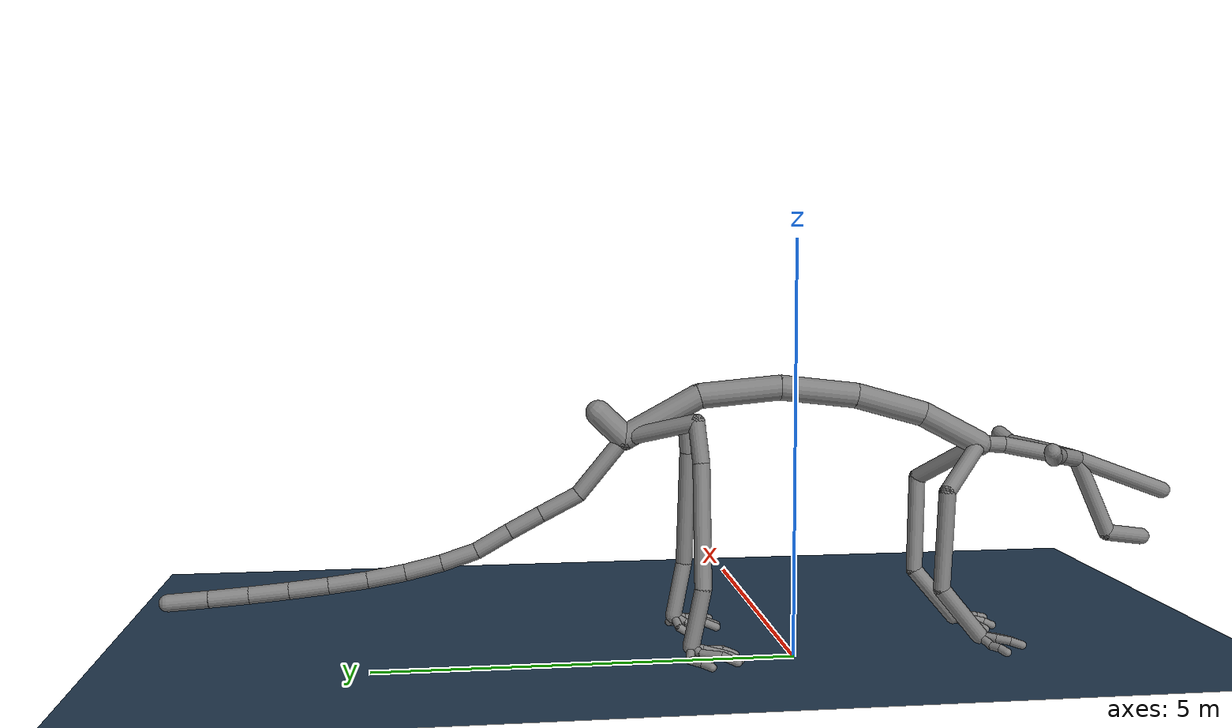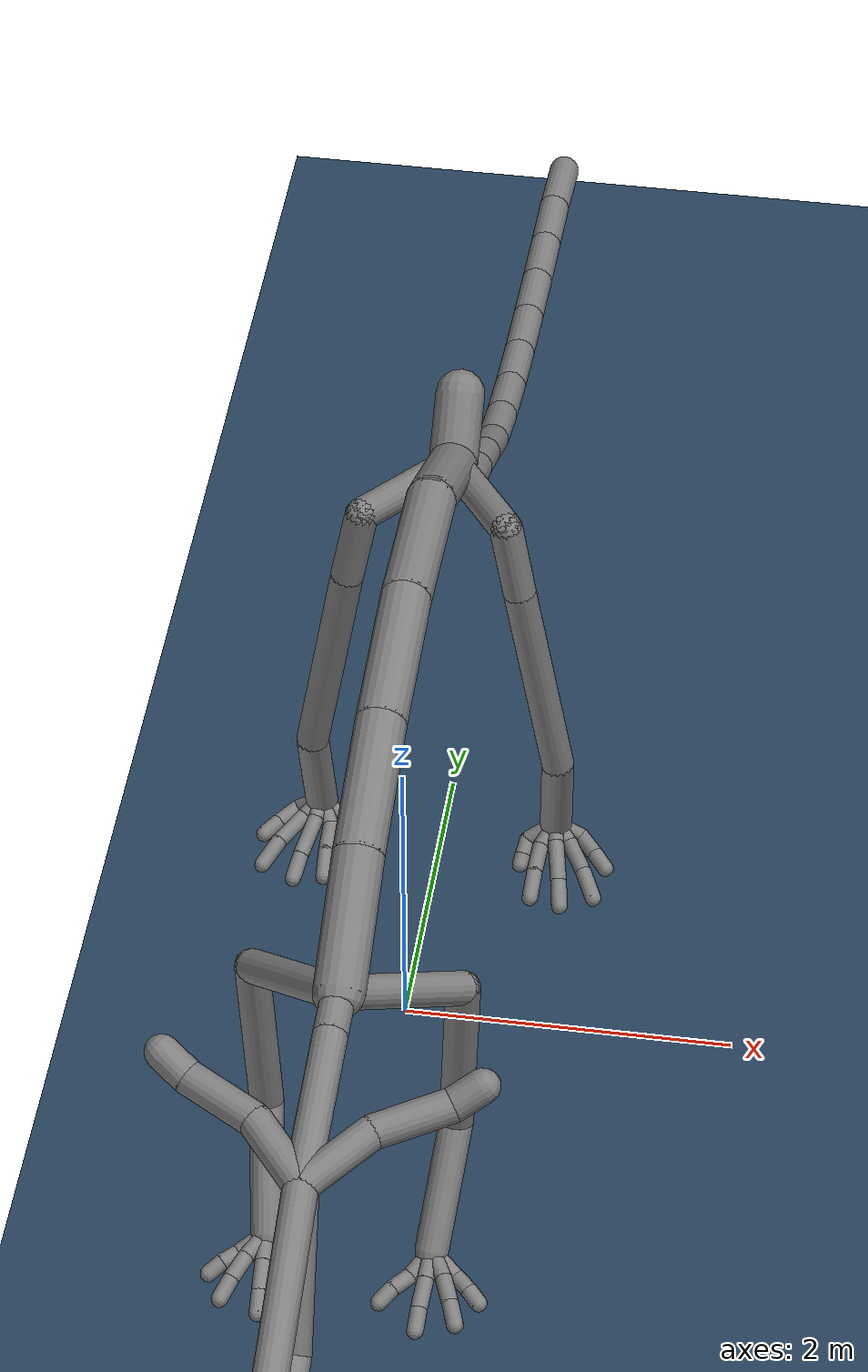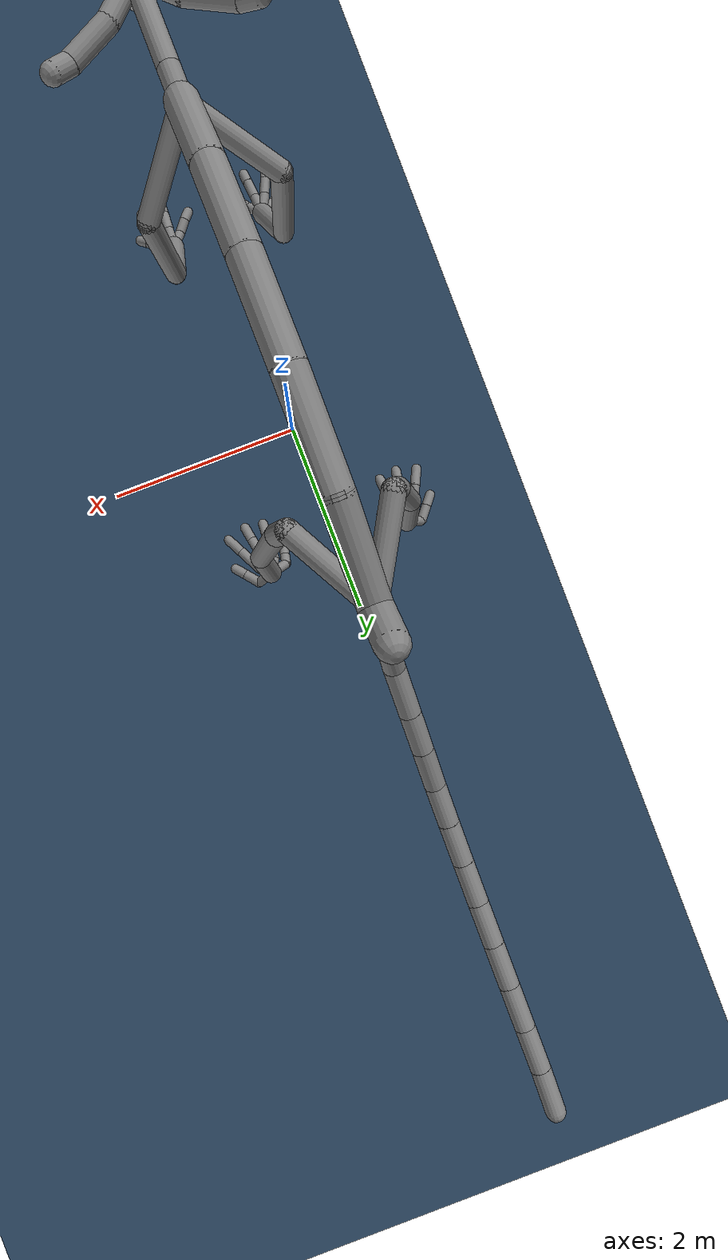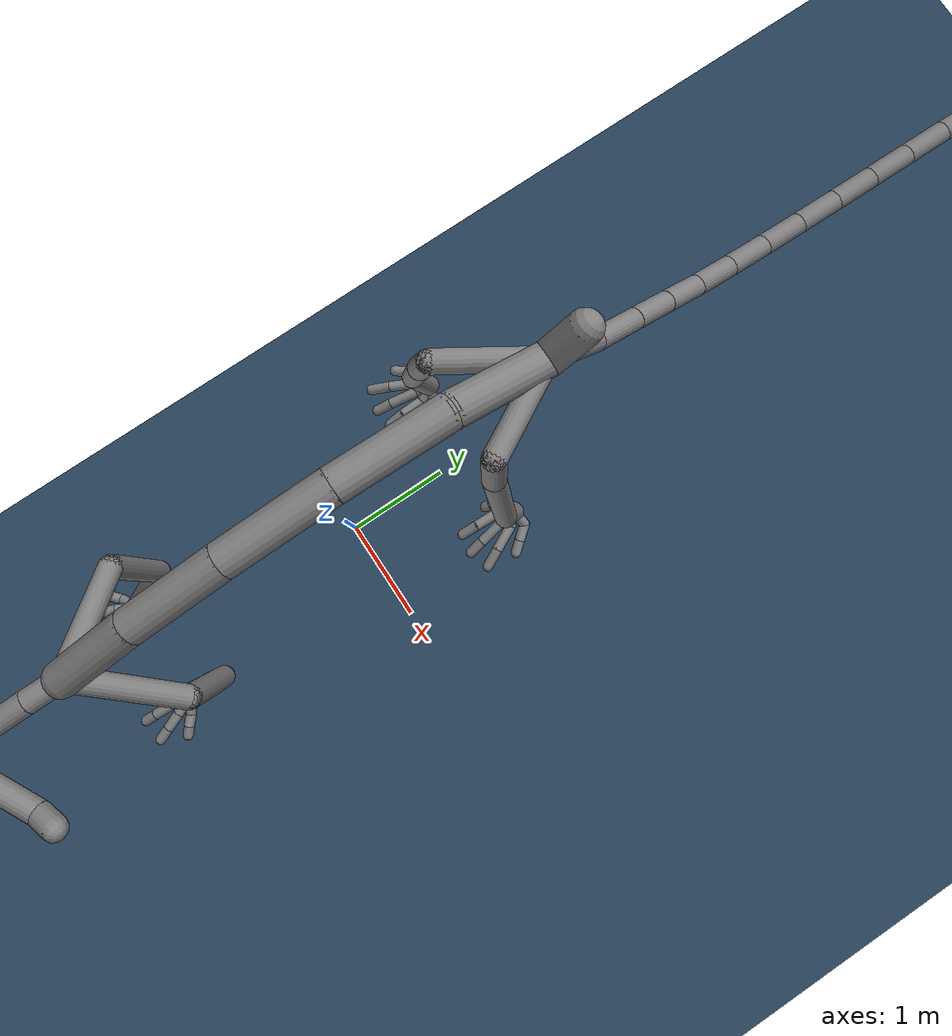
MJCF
<mujoco model="unnamed_model">
  <compiler angle="degree"/>
  <option timestep="0.001" integrator="implicitfast"/>
  <default>
    <default class="/">
      <tendon range="-1 1"/>
      <general ctrllimited="true" forcelimited="false" ctrlrange="-1 1" gainprm="5"/>
    </default>
  </default>
  <asset>
    <texture name="grid" type="2d" builtin="checker" rgb1="0.10000000000000001 0.20000000000000001 0.29999999999999999" rgb2="0.20000000000000001 0.29999999999999999 0.40000000000000002" width="512" height="512"/>
    <material name="grid" class="/" texture="grid" texrepeat="1 1" texuniform="true" reflectance="0.20000000000000001"/>
  </asset>
  <worldbody>
    <camera name="cam0" pos="5 -17 7" xyaxes="1 0.25 0 0 0.3 1" mode="trackcom"/>
    <geom name="floor" class="/" type="plane" condim="3" size="0 0 0.050000000000000003" material="grid"/>
    <body name="Back_1" pos="0.00021187790844123811 2.3454556465148926 2.9882309436798096" quat="1 0 0 0">
      <joint name="//unnamed_joint_0" class="/" type="free"/>
      <geom name="Back_1_geom" class="/" type="capsule" size="0.14999999999999999" fromto="0 0 0 0 -0.30201101303100586 -0.2969825267791748"/>
      <body name="Back_2" pos="0 -0.30201101303100586 -0.2969825267791748" quat="1 0 0 0">
        <joint name="rx_Back_2" class="/" type="hinge" axis="1 0 0" stiffness="0.01" range="-9.9999997090929202 9.9999997090929202" damping="0.01"/>
        <joint name="rz_Back_2" class="/" type="hinge" axis="0 0 1" stiffness="0.01" range="-9.9999997090929202 6.0000001669652114" damping="0.01"/>
        <geom name="Back_2_geom" class="/" type="capsule" size="0.14999999999999999" fromto="0 0 0 0 -0.87888956069946289 0.4750666618347168"/>
        <body name="Back_3" pos="0 -0.87888956069946289 0.4750666618347168" quat="1 0 0 0">
          <joint name="rx_Back_3" class="/" type="hinge" axis="1 0 0" stiffness="0.01" range="-9.9999997090929202 9.9999997090929202" damping="0.01"/>
          <joint name="rz_Back_3" class="/" type="hinge" axis="0 0 1" stiffness="0.01" range="-9.9999997090929202 6.0000001669652114" damping="0.01"/>
          <geom name="Back_3_geom" class="/" type="capsule" size="0.14999999999999999" fromto="0 0 0 0 -0.96779227256774902 0.087907791137695312"/>
          <body name="Back_4" pos="0 -0.96779227256774902 0.087907791137695312" quat="1 0 0 0">
            <joint name="rx_Back_4" class="/" type="hinge" axis="1 0 0" stiffness="0.01" range="-9.9999997090929202 9.9999997090929202" damping="0.01"/>
            <joint name="rz_Back_4" class="/" type="hinge" axis="0 0 1" stiffness="0.01" range="-9.9999997090929202 6.0000001669652114" damping="0.01"/>
            <geom name="Back_4_geom" class="/" type="capsule" size="0.14999999999999999" fromto="0 0 0 0 -0.92454928159713745 -0.10741996765136719"/>
            <body name="Back_5" pos="0 -0.92454928159713745 -0.10741996765136719" quat="1 0 0 0">
              <joint name="rx_Back_5" class="/" type="hinge" axis="1 0 0" stiffness="0.01" range="-9.9999997090929202 9.9999997090929202" damping="0.01"/>
              <joint name="rz_Back_5" class="/" type="hinge" axis="0 0 1" stiffness="0.01" range="-9.9999997090929202 6.0000001669652114" damping="0.01"/>
              <geom name="Back_5_geom" class="/" type="capsule" size="0.14999999999999999" fromto="0 0 0 0 -0.82181739807128906 -0.23150253295898438"/>
              <body name="Back_6" pos="0 -0.82181739807128906 -0.23150253295898438" quat="1 0 0 0">
                <joint name="rx_Back_6" class="/" type="hinge" axis="1 0 0" stiffness="0.01" range="-9.9999997090929202 9.9999997090929202" damping="0.01"/>
                <joint name="rz_Back_6" class="/" type="hinge" axis="0 0 1" stiffness="0.01" range="-9.9999997090929202 6.0000001669652114" damping="0.01"/>
                <geom name="Back_6_geom" class="/" type="capsule" size="0.14999999999999999" fromto="0 0 0 0 -0.71339571475982666 -0.37315845489501953"/>
                <body name="Neck" pos="0 -0.71339571475982666 -0.37315845489501953" quat="1 0 0 0">
                  <geom name="Neck_geom" class="/" type="capsule" size="0.10000000000000001" fromto="0 0 0 0 -0.30498695373535156 -0.017315864562988281"/>
                  <body name="Head" pos="0 -0.30498695373535156 -0.017315864562988281" quat="1 0 0 0">
                    <geom name="Head_geom" class="/" type="capsule" size="0.10000000000000001" fromto="0 0 0 -0.010121570900082588 -0.93259739875793457 -0.19159269332885742"/>
                    <body name="L_Ear_1" pos="-0.010121570900082588 -0.93259739875793457 -0.19159269332885742" quat="1 0 0 0">
                      <geom name="L_Ear_1_geom" class="/" type="capsule" size="0.10000000000000001" fromto="0 0 0 0.33274480700492859 0.35448598861694336 0.086129665374755859"/>
                      <body name="L_Ear_2" pos="0.33274480700492859 0.35448598861694336 0.086129665374755859" quat="1 0 0 0">
                        <geom name="L_Ear_2_geom" class="/" type="capsule" size="0.10000000000000001" fromto="0 0 0 0.40737244486808777 0.22723960876464844 0.034210205078125"/>
                        <body name="L_Ear_3" pos="0.40737244486808777 0.22723960876464844 0.034210205078125" quat="1 0 0 0">
                          <geom name="L_Ear_3_geom" class="/" type="capsule" size="0.10000000000000001" fromto="0 0 0 0.1545829176902771 0.080089569091796875 0.090645790100097656"/>
                        </body>
                      </body>
                    </body>
                    <body name="Jaw_1" pos="-0.010121570900082588 -0.93259739875793457 -0.19159269332885742" quat="1 0 0 0">
                      <geom name="Jaw_1_geom" class="/" type="capsule" size="0.10000000000000001" fromto="0 0 0 0.010121571831405163 -0.42033553123474121 -0.92277634143829346"/>
                      <body name="Jaw_2" pos="0.010121571831405163 -0.42033553123474121 -0.92277634143829346" quat="1 0 0 0">
                        <geom name="Jaw_2_geom" class="/" type="capsule" size="0.10000000000000001" fromto="0 0 0 0.0098123569041490555 -0.4501652717590332 -0.062956690788269043"/>
                      </body>
                    </body>
                    <body name="R_Ear_1" pos="-0.010121570900082588 -0.93259739875793457 -0.19159269332885742" quat="1 0 0 0">
                      <geom name="R_Ear_1_geom" class="/" type="capsule" size="0.10000000000000001" fromto="0 0 0 -0.3125016987323761 0.35448598861694336 0.086129665374755859"/>
                      <body name="R_Ear_2" pos="-0.3125016987323761 0.35448598861694336 0.086129665374755859" quat="1 0 0 0">
                        <geom name="R_Ear_2_geom" class="/" type="capsule" size="0.10000000000000001" fromto="0 0 0 -0.40737241506576538 0.22723984718322754 0.034210205078125"/>
                        <body name="R_Ear_3" pos="-0.40737241506576538 0.22723984718322754 0.034210205078125" quat="1 0 0 0">
                          <geom name="R_Ear_3_geom" class="/" type="capsule" size="0.10000000000000001" fromto="0 0 0 -0.1545829176902771 0.080089807510375977 0.090645790100097656"/>
                        </body>
                      </body>
                    </body>
                    <body name="Nose" pos="-0.010121570900082588 -0.93259739875793457 -0.19159269332885742" quat="1 0 0 0">
                      <geom name="Nose_geom" class="/" type="capsule" size="0.10000000000000001" fromto="0 0 0 9.3132257461547852e-10 -1.112250804901123 -0.41056263446807861"/>
                    </body>
                    <site name="Head" class="/" type="box" size="0.002 0.002 0.002"/>
                  </body>
                </body>
                <body name="L_F_Paw_1" pos="0 -0.71339571475982666 -0.37315845489501953" quat="1 0 0 0">
                  <joint name="rx_L_F_Paw_1" class="/" type="hinge" axis="1 0 0" stiffness="0.01" range="-30.000000834826057 30.000000834826057" damping="0.01"/>
                  <joint name="ry_L_F_Paw_1" class="/" type="hinge" axis="0 1 0" stiffness="0.01" range="-19.99999941818584 19.99999941818584" damping="0.01"/>
                  <joint name="rz_L_F_Paw_1" class="/" type="hinge" axis="0 0 1" stiffness="0.01" range="-30.000000834826057 30.000000834826057" damping="0.01"/>
                  <geom name="L_F_Paw_1_geom" class="/" type="capsule" size="0.10000000000000001" fromto="0 0 0 0.60480690002441406 0.5854717493057251 -0.48604297637939453"/>
                  <body name="L_F_Paw_2" pos="0.60480690002441406 0.5854717493057251 -0.48604297637939453" quat="1 0 0 0">
                    <joint name="rx_L_F_Paw_2" class="/" type="hinge" axis="1 0 0" stiffness="0.01" range="-9.9999997090929202 9.9999997090929202" damping="0.01"/>
                    <joint name="rz_L_F_Paw_2" class="/" type="hinge" axis="0 0 1" stiffness="0.01" range="-45.00000125223908 45.00000125223908" damping="0.01"/>
                    <geom name="L_F_Paw_2_geom" class="/" type="capsule" size="0.10000000000000001" fromto="0 0 0 -0.047607064247131348 0.032661795616149902 -1.1593438386917114"/>
                    <body name="L_F_Paw_3" pos="-0.047607064247131348 0.032661795616149902 -1.1593438386917114" quat="1 0 0 0">
                      <geom name="L_F_Paw_3_geom" class="/" type="capsule" size="0.10000000000000001" fromto="0 0 0 -0.073491662740707397 -0.49489045143127441 -0.59002864360809326"/>
                      <body name="L_F_Finger_2_1" pos="-0.073491662740707397 -0.49489045143127441 -0.59002864360809326" quat="1 0 0 0">
                        <geom name="L_F_Finger_2_1_geom" class="/" type="capsule" size="0.050000000000000003" fromto="0 0 0 -0.0078994333744049072 -0.19724273681640625 -0.03392493724822998"/>
                        <body name="L_F_Finger_2_2" pos="-0.0078994333744049072 -0.19724273681640625 -0.03392493724822998" quat="1 0 0 0">
                          <geom name="L_F_Finger_2_2_geom" class="/" type="capsule" size="0.050000000000000003" fromto="0 0 0 -0.01064792275428772 -0.18222808837890625 -0.045739084482192993"/>
                          <body name="L_F_Finger_2_3" pos="-0.01064792275428772 -0.18222808837890625 -0.045739084482192993" quat="1 0 0 0">
                            <geom name="L_F_Finger_2_3_geom" class="/" type="capsule" size="0.050000000000000003" fromto="0 0 0 -0.0049792826175689697 -0.12030792236328125 -0.052464395761489868"/>
                          </body>
                        </body>
                      </body>
                      <body name="L_F_Finger_3_1" pos="-0.073491662740707397 -0.49489045143127441 -0.59002864360809326" quat="1 0 0 0">
                        <geom name="L_F_Finger_3_1_geom" class="/" type="capsule" size="0.050000000000000003" fromto="0 0 0 0.095373988151550293 -0.17918014526367188 -0.022127985954284668"/>
                        <body name="L_F_Finger_3_2" pos="0.095373988151550293 -0.17918014526367188 -0.022127985954284668" quat="1 0 0 0">
                          <geom name="L_F_Finger_3_2_geom" class="/" type="capsule" size="0.050000000000000003" fromto="0 0 0 0.061350643634796143 -0.15597343444824219 -0.026206851005554199"/>
                          <body name="L_F_Finger_3_3" pos="0.061350643634796143 -0.15597343444824219 -0.026206851005554199" quat="1 0 0 0">
                            <geom name="L_F_Finger_3_3_geom" class="/" type="capsule" size="0.050000000000000003" fromto="0 0 0 0.046480953693389893 -0.12756919860839844 -0.038167834281921387"/>
                            <site name="L_F_Finger_3_3" class="/" type="box" size="0.0040000000000000001 0.0040000000000000001 0.002"/>
                          </body>
                        </body>
                      </body>
                      <body name="L_F_Finger_4_1" pos="-0.073491662740707397 -0.49489045143127441 -0.59002864360809326" quat="1 0 0 0">
                        <geom name="L_F_Finger_4_1_geom" class="/" type="capsule" size="0.050000000000000003" fromto="0 0 0 0.15609729290008545 -0.09903717041015625 -0.091727137565612793"/>
                        <body name="L_F_Finger_4_2" pos="0.15609729290008545 -0.09903717041015625 -0.091727137565612793" quat="1 0 0 0">
                          <geom name="L_F_Finger_4_2_geom" class="/" type="capsule" size="0.050000000000000003" fromto="0 0 0 0.084686100482940674 -0.077215194702148438 -0.011312365531921387"/>
                          <body name="L_F_Finger_4_3" pos="0.084686100482940674 -0.077215194702148438 -0.011312365531921387" quat="1 0 0 0">
                            <geom name="L_F_Finger_4_3_geom" class="/" type="capsule" size="0.050000000000000003" fromto="0 0 0 0.068652927875518799 -0.063507080078125 -0.036796450614929199"/>
                          </body>
                        </body>
                      </body>
                      <body name="L_F_Finger_1_1" pos="-0.073491662740707397 -0.49489045143127441 -0.59002864360809326" quat="1 0 0 0">
                        <geom name="L_F_Finger_1_1_geom" class="/" type="capsule" size="0.050000000000000003" fromto="0 0 0 -0.10550609230995178 -0.1405181884765625 -0.081401705741882324"/>
                        <body name="L_F_Finger_1_2" pos="-0.10550609230995178 -0.1405181884765625 -0.081401705741882324" quat="1 0 0 0">
                          <geom name="L_F_Finger_1_2_geom" class="/" type="capsule" size="0.050000000000000003" fromto="0 0 0 -0.088151127099990845 -0.10850334167480469 0.00011074542999267578"/>
                          <body name="L_F_Finger_1_3" pos="-0.088151127099990845 -0.10850334167480469 0.00011074542999267578" quat="1 0 0 0">
                            <geom name="L_F_Finger_1_3_geom" class="/" type="capsule" size="0.050000000000000003" fromto="0 0 0 -0.065333500504493713 -0.083648681640625 -0.036964312195777893"/>
                          </body>
                        </body>
                      </body>
                    </body>
                  </body>
                </body>
                <body name="R_F_Paw_1" pos="0 -0.71339571475982666 -0.37315845489501953" quat="1 0 0 0">
                  <joint name="rx_R_F_Paw_1" class="/" type="hinge" axis="1 0 0" stiffness="0.01" range="-30.000000834826057 30.000000834826057" damping="0.01"/>
                  <joint name="ry_R_F_Paw_1" class="/" type="hinge" axis="0 1 0" stiffness="0.01" range="-19.99999941818584 19.99999941818584" damping="0.01"/>
                  <joint name="rz_R_F_Paw_1" class="/" type="hinge" axis="0 0 1" stiffness="0.01" range="-30.000000834826057 30.000000834826057" damping="0.01"/>
                  <geom name="R_F_Paw_1_geom" class="/" type="capsule" size="0.10000000000000001" fromto="0 0 0 -0.60480690002441406 0.5854717493057251 -0.48604297637939453"/>
                  <body name="R_F_Paw_2" pos="-0.60480690002441406 0.5854717493057251 -0.48604297637939453" quat="1 0 0 0">
                    <joint name="rx_R_F_Paw_2" class="/" type="hinge" axis="1 0 0" stiffness="0.01" range="-9.9999997090929202 9.9999997090929202" damping="0.01"/>
                    <joint name="rz_R_F_Paw_2" class="/" type="hinge" axis="0 0 1" stiffness="0.01" range="-45.00000125223908 45.00000125223908" damping="0.01"/>
                    <geom name="R_F_Paw_2_geom" class="/" type="capsule" size="0.10000000000000001" fromto="0 0 0 0.047607064247131348 0.032661914825439453 -1.1593438386917114"/>
                    <body name="R_F_Paw_3" pos="0.047607064247131348 0.032661914825439453 -1.1593438386917114" quat="1 0 0 0">
                      <geom name="R_F_Paw_3_geom" class="/" type="capsule" size="0.10000000000000001" fromto="0 0 0 0.073491662740707397 -0.49489033222198486 -0.59002876281738281"/>
                      <body name="R_F_Finger_2_1" pos="0.073491662740707397 -0.49489033222198486 -0.59002876281738281" quat="1 0 0 0">
                        <geom name="R_F_Finger_2_1_geom" class="/" type="capsule" size="0.050000000000000003" fromto="0 0 0 0.0078994631767272949 -0.19724273681640625 -0.033925056457519531"/>
                        <body name="R_F_Finger_2_2" pos="0.0078994631767272949 -0.19724273681640625 -0.033925056457519531" quat="1 0 0 0">
                          <geom name="R_F_Finger_2_2_geom" class="/" type="capsule" size="0.050000000000000003" fromto="0 0 0 0.010647952556610107 -0.18222808837890625 -0.045739173889160156"/>
                          <body name="R_F_Finger_2_3" pos="0.010647952556610107 -0.18222808837890625 -0.045739173889160156" quat="1 0 0 0">
                            <geom name="R_F_Finger_2_3_geom" class="/" type="capsule" size="0.050000000000000003" fromto="0 0 0 0.0049793124198913574 -0.12030792236328125 -0.052464485168457031"/>
                          </body>
                        </body>
                      </body>
                      <body name="R_F_Finger_3_1" pos="0.073491662740707397 -0.49489033222198486 -0.59002876281738281" quat="1 0 0 0">
                        <geom name="R_F_Finger_3_1_geom" class="/" type="capsule" size="0.050000000000000003" fromto="0 0 0 -0.09537389874458313 -0.17918014526367188 -0.022128105163574219"/>
                        <body name="R_F_Finger_3_2" pos="-0.09537389874458313 -0.17918014526367188 -0.022128105163574219" quat="1 0 0 0">
                          <geom name="R_F_Finger_3_2_geom" class="/" type="capsule" size="0.050000000000000003" fromto="0 0 0 -0.061350643634796143 -0.15597343444824219 -0.02620697021484375"/>
                          <body name="R_F_Finger_3_3" pos="-0.061350643634796143 -0.15597343444824219 -0.02620697021484375" quat="1 0 0 0">
                            <geom name="R_F_Finger_3_3_geom" class="/" type="capsule" size="0.050000000000000003" fromto="0 0 0 -0.046480953693389893 -0.12756919860839844 -0.038167953491210938"/>
                            <site name="R_F_Finger_3_3" class="/" type="box" size="0.0040000000000000001 0.0040000000000000001 0.002"/>
                          </body>
                        </body>
                      </body>
                      <body name="R_F_Finger_4_1" pos="0.073491662740707397 -0.49489033222198486 -0.59002876281738281" quat="1 0 0 0">
                        <geom name="R_F_Finger_4_1_geom" class="/" type="capsule" size="0.050000000000000003" fromto="0 0 0 -0.15609720349311829 -0.09903717041015625 -0.091727256774902344"/>
                        <body name="R_F_Finger_4_2" pos="-0.15609720349311829 -0.09903717041015625 -0.091727256774902344" quat="1 0 0 0">
                          <geom name="R_F_Finger_4_2_geom" class="/" type="capsule" size="0.050000000000000003" fromto="0 0 0 -0.084686100482940674 -0.077215194702148438 -0.011312469840049744"/>
                          <body name="R_F_Finger_4_3" pos="-0.084686100482940674 -0.077215194702148438 -0.011312469840049744" quat="1 0 0 0">
                            <geom name="R_F_Finger_4_3_geom" class="/" type="capsule" size="0.050000000000000003" fromto="0 0 0 -0.068652927875518799 -0.063507080078125 -0.036796554923057556"/>
                          </body>
                        </body>
                      </body>
                      <body name="R_F_Finger_1_1" pos="0.073491662740707397 -0.49489033222198486 -0.59002876281738281" quat="1 0 0 0">
                        <geom name="R_F_Finger_1_1_geom" class="/" type="capsule" size="0.050000000000000003" fromto="0 0 0 0.10550612211227417 -0.1405181884765625 -0.081401824951171875"/>
                        <body name="R_F_Finger_1_2" pos="0.10550612211227417 -0.1405181884765625 -0.081401824951171875" quat="1 0 0 0">
                          <geom name="R_F_Finger_1_2_geom" class="/" type="capsule" size="0.050000000000000003" fromto="0 0 0 0.08815118670463562 -0.10850334167480469 0.000110626220703125"/>
                          <body name="R_F_Finger_1_3" pos="0.08815118670463562 -0.10850334167480469 0.000110626220703125" quat="1 0 0 0">
                            <geom name="R_F_Finger_1_3_geom" class="/" type="capsule" size="0.050000000000000003" fromto="0 0 0 0.065333589911460876 -0.083648681640625 -0.03696441650390625"/>
                          </body>
                        </body>
                      </body>
                    </body>
                  </body>
                </body>
              </body>
            </body>
          </body>
        </body>
      </body>
      <body name="Tail_1" pos="0 -0.30201101303100586 -0.2969825267791748" quat="1 0 0 0">
        <joint name="rx_Tail_1" class="/" type="hinge" axis="1 0 0" stiffness="0.01" range="-4.9999998545464601 4.9999998545464601" damping="0.01"/>
        <joint name="rz_Tail_1" class="/" type="hinge" axis="0 0 1" stiffness="0.01" range="-4.9999998545464601 4.9999998545464601" damping="0.01"/>
        <geom name="Tail_1_geom" class="/" type="capsule" size="0.10000000000000001" fromto="0 0 0 0 0.5425865650177002 -0.65490341186523438"/>
        <body name="Tail_2" pos="0 0.5425865650177002 -0.65490341186523438" quat="1 0 0 0">
          <joint name="rx_Tail_2" class="/" type="hinge" axis="1 0 0" stiffness="0.01" range="-4.9999998545464601 4.9999998545464601" damping="0.01"/>
          <joint name="rz_Tail_2" class="/" type="hinge" axis="0 0 1" stiffness="0.01" range="-4.9999998545464601 4.9999998545464601" damping="0.01"/>
          <geom name="Tail_2_geom" class="/" type="capsule" size="0.10000000000000001" fromto="0 0 0 0 0.43598294258117676 -0.22396934032440186"/>
          <body name="Tail_3" pos="0 0.43598294258117676 -0.22396934032440186" quat="1 0 0 0">
            <joint name="rx_Tail_3" class="/" type="hinge" axis="1 0 0" stiffness="0.01" range="-4.9999998545464601 4.9999998545464601" damping="0.01"/>
            <joint name="rz_Tail_3" class="/" type="hinge" axis="0 0 1" stiffness="0.01" range="-4.9999998545464601 4.9999998545464601" damping="0.01"/>
            <geom name="Tail_3_geom" class="/" type="capsule" size="0.10000000000000001" fromto="0 0 0 0 0.36639881134033203 -0.19423103332519531"/>
            <body name="Tail_4" pos="0 0.36639881134033203 -0.19423103332519531" quat="1 0 0 0">
              <joint name="rx_Tail_4" class="/" type="hinge" axis="1 0 0" stiffness="0.01" range="-4.9999998545464601 4.9999998545464601" damping="0.01"/>
              <joint name="rz_Tail_4" class="/" type="hinge" axis="0 0 1" stiffness="0.01" range="-4.9999998545464601 4.9999998545464601" damping="0.01"/>
              <geom name="Tail_4_geom" class="/" type="capsule" size="0.10000000000000001" fromto="0 0 0 0 0.38149547576904297 -0.21759867668151855"/>
              <body name="Tail_5" pos="0 0.38149547576904297 -0.21759867668151855" quat="1 0 0 0">
                <joint name="rx_Tail_5" class="/" type="hinge" axis="1 0 0" stiffness="0.01" range="-4.9999998545464601 4.9999998545464601" damping="0.01"/>
                <joint name="rz_Tail_5" class="/" type="hinge" axis="0 0 1" stiffness="0.01" range="-4.9999998545464601 4.9999998545464601" damping="0.01"/>
                <geom name="Tail_5_geom" class="/" type="capsule" size="0.10000000000000001" fromto="0 0 0 0 0.3993067741394043 -0.12997174263000488"/>
                <body name="Tail_6" pos="0 0.3993067741394043 -0.12997174263000488" quat="1 0 0 0">
                  <joint name="rx_Tail_6" class="/" type="hinge" axis="1 0 0" stiffness="0.01" range="-4.9999998545464601 4.9999998545464601" damping="0.01"/>
                  <joint name="rz_Tail_6" class="/" type="hinge" axis="0 0 1" stiffness="0.01" range="-4.9999998545464601 4.9999998545464601" damping="0.01"/>
                  <geom name="Tail_6_geom" class="/" type="capsule" size="0.10000000000000001" fromto="0 0 0 0 0.41529750823974609 -0.097936868667602539"/>
                  <body name="Tail_7" pos="0 0.41529750823974609 -0.097936868667602539" quat="1 0 0 0">
                    <joint name="rx_Tail_7" class="/" type="hinge" axis="1 0 0" stiffness="0.01" range="-4.9999998545464601 4.9999998545464601" damping="0.01"/>
                    <joint name="rz_Tail_7" class="/" type="hinge" axis="0 0 1" stiffness="0.01" range="-4.9999998545464601 4.9999998545464601" damping="0.01"/>
                    <geom name="Tail_7_geom" class="/" type="capsule" size="0.10000000000000001" fromto="0 0 0 0 0.42778778076171875 -0.072384834289550781"/>
                    <body name="Tail_8" pos="0 0.42778778076171875 -0.072384834289550781" quat="1 0 0 0">
                      <joint name="rx_Tail_8" class="/" type="hinge" axis="1 0 0" stiffness="0.01" range="-4.9999998545464601 4.9999998545464601" damping="0.01"/>
                      <joint name="rz_Tail_8" class="/" type="hinge" axis="0 0 1" stiffness="0.01" range="-4.9999998545464601 4.9999998545464601" damping="0.01"/>
                      <geom name="Tail_8_geom" class="/" type="capsule" size="0.10000000000000001" fromto="0 0 0 0 0.43730831146240234 -0.053386211395263672"/>
                      <body name="Tail_9" pos="0 0.43730831146240234 -0.053386211395263672" quat="1 0 0 0">
                        <joint name="rx_Tail_9" class="/" type="hinge" axis="1 0 0" stiffness="0.01" range="-4.9999998545464601 4.9999998545464601" damping="0.01"/>
                        <joint name="rz_Tail_9" class="/" type="hinge" axis="0 0 1" stiffness="0.01" range="-4.9999998545464601 4.9999998545464601" damping="0.01"/>
                        <geom name="Tail_9_geom" class="/" type="capsule" size="0.10000000000000001" fromto="0 0 0 0 0.44225788116455078 -0.044230461120605469"/>
                        <body name="Tail_10" pos="0 0.44225788116455078 -0.044230461120605469" quat="1 0 0 0">
                          <joint name="rx_Tail_10" class="/" type="hinge" axis="1 0 0" stiffness="0.01" range="-4.9999998545464601 4.9999998545464601" damping="0.01"/>
                          <joint name="rz_Tail_10" class="/" type="hinge" axis="0 0 1" stiffness="0.01" range="-4.9999998545464601 4.9999998545464601" damping="0.01"/>
                          <geom name="Tail_10_geom" class="/" type="capsule" size="0.10000000000000001" fromto="0 0 0 0 0.44363784790039062 -0.037496566772460938"/>
                          <body name="Tail_11" pos="0 0.44363784790039062 -0.037496566772460938" quat="1 0 0 0">
                            <joint name="rx_Tail_11" class="/" type="hinge" axis="1 0 0" stiffness="0.01" range="-4.9999998545464601 4.9999998545464601" damping="0.01"/>
                            <joint name="rz_Tail_11" class="/" type="hinge" axis="0 0 1" stiffness="0.01" range="-4.9999998545464601 4.9999998545464601" damping="0.01"/>
                            <geom name="Tail_11_geom" class="/" type="capsule" size="0.10000000000000001" fromto="0 0 0 0 0.44546031951904297 -0.031890392303466797"/>
                            <body name="Tail_12" pos="0 0.44546031951904297 -0.031890392303466797" quat="1 0 0 0">
                              <joint name="rx_Tail_12" class="/" type="hinge" axis="1 0 0" stiffness="0.01" range="-4.9999998545464601 4.9999998545464601" damping="0.01"/>
                              <joint name="rz_Tail_12" class="/" type="hinge" axis="0 0 1" stiffness="0.01" range="-4.9999998545464601 4.9999998545464601" damping="0.01"/>
                              <geom name="Tail_12_geom" class="/" type="capsule" size="0.10000000000000001" fromto="0 0 0 0.0098123550415039062 0.44999885559082031 -0.029788017272949219"/>
                            </body>
                          </body>
                        </body>
                      </body>
                    </body>
                  </body>
                </body>
              </body>
            </body>
          </body>
        </body>
      </body>
      <body name="R_B_Paw_1" pos="0 -0.30201101303100586 -0.2969825267791748" quat="1 0 0 0">
        <joint name="rx_R_B_Paw_1" class="/" type="hinge" axis="1 0 0" stiffness="0.01" range="-39.999998836371681 39.999998836371681" damping="0.01"/>
        <joint name="ry_R_B_Paw_1" class="/" type="hinge" axis="0 1 0" stiffness="0.01" range="-9.9999997090929202 19.99999941818584" damping="0.01"/>
        <joint name="rz_R_B_Paw_1" class="/" type="hinge" axis="0 0 1" stiffness="0.01" range="-9.9999997090929202 19.99999941818584" damping="0.01"/>
        <geom name="R_B_Paw_1_geom" class="/" type="capsule" size="0.10000000000000001" fromto="0 0 0 -0.43308162689208984 -0.78187799453735352 0.21593832969665527"/>
        <body name="R_B_Paw_2" pos="-0.43308162689208984 -0.78187799453735352 0.21593832969665527" quat="1 0 0 0">
          <joint name="rx_R_B_Paw_2" class="/" type="hinge" axis="1 0 0" stiffness="0.01" range="-45.00000125223908 50.000000253011898" damping="0.01"/>
          <joint name="rz_R_B_Paw_2" class="/" type="hinge" axis="0 0 1" stiffness="0.01" range="-25.999999585151052 19.99999941818584" damping="0.01"/>
          <geom name="R_B_Paw_2_geom" class="/" type="capsule" size="0.10000000000000001" fromto="0 0 0 -0.08963388204574585 -0.044113039970397949 -0.4642941951751709"/>
          <body name="R_B_Paw_3" pos="-0.08963388204574585 -0.044113039970397949 -0.4642941951751709" quat="1 0 0 0">
            <geom name="R_B_Paw_3_geom" class="/" type="capsule" size="0.10000000000000001" fromto="0 0 0 -0.24146270751953125 0.014137387275695801 -1.4100792407989502"/>
            <body name="R_B_Paw_4" pos="-0.24146270751953125 0.014137387275695801 -1.4100792407989502" quat="1 0 0 0">
              <geom name="R_B_Paw_4_geom" class="/" type="capsule" size="0.10000000000000001" fromto="0 0 0 0.022909224033355713 0.13376617431640625 -0.65371966361999512"/>
              <body name="R_B_Finger_1_1" pos="0.022909224033355713 0.13376617431640625 -0.65371966361999512" quat="1 0 0 0">
                <geom name="R_B_Finger_1_1_geom" class="/" type="capsule" size="0.050000000000000003" fromto="0 0 0 0.17054373025894165 -0.046525955200195312 -0.11439388990402222"/>
                <body name="R_B_Finger_1_2" pos="0.17054373025894165 -0.046525955200195312 -0.11439388990402222" quat="1 0 0 0">
                  <geom name="R_B_Finger_1_2_geom" class="/" type="capsule" size="0.050000000000000003" fromto="0 0 0 0.017756521701812744 -0.086236834526062012 -0.053035557270050049"/>
                  <body name="R_B_Finger_1_3" pos="0.017756521701812744 -0.086236834526062012 -0.053035557270050049" quat="1 0 0 0">
                    <geom name="R_B_Finger_1_3_geom" class="/" type="capsule" size="0.050000000000000003" fromto="0 0 0 0.011121809482574463 -0.05400848388671875 -0.038996756076812744"/>
                  </body>
                </body>
              </body>
              <body name="R_B_Finger_2_1" pos="0.022909224033355713 0.13376617431640625 -0.65371966361999512" quat="1 0 0 0">
                <geom name="R_B_Finger_2_1_geom" class="/" type="capsule" size="0.050000000000000003" fromto="0 0 0 0.077993452548980713 -0.13555526733398438 -0.079574406147003174"/>
                <body name="R_B_Finger_2_2" pos="0.077993452548980713 -0.13555526733398438 -0.079574406147003174" quat="1 0 0 0">
                  <geom name="R_B_Finger_2_2_geom" class="/" type="capsule" size="0.050000000000000003" fromto="0 0 0 0.0077152848243713379 -0.22741127014160156 -0.00027364492416381836"/>
                  <body name="R_B_Finger_2_3" pos="0.0077152848243713379 -0.22741127014160156 -0.00027364492416381836" quat="1 0 0 0">
                    <geom name="R_B_Finger_2_3_geom" class="/" type="capsule" size="0.050000000000000003" fromto="0 0 0 0.0069323182106018066 -0.15901553630828857 -0.068407773971557617"/>
                  </body>
                </body>
              </body>
              <body name="R_B_Finger_3_1" pos="0.022909224033355713 0.13376617431640625 -0.65371966361999512" quat="1 0 0 0">
                <geom name="R_B_Finger_3_1_geom" class="/" type="capsule" size="0.050000000000000003" fromto="0 0 0 -0.017782151699066162 -0.13286590576171875 -0.04080277681350708"/>
                <body name="R_B_Finger_3_2" pos="-0.017782151699066162 -0.13286590576171875 -0.04080277681350708" quat="1 0 0 0">
                  <geom name="R_B_Finger_3_2_geom" class="/" type="capsule" size="0.050000000000000003" fromto="0 0 0 -0.052429139614105225 -0.26937472820281982 -0.062586665153503418"/>
                  <body name="R_B_Finger_3_3" pos="-0.052429139614105225 -0.26937472820281982 -0.062586665153503418" quat="1 0 0 0">
                    <geom name="R_B_Finger_3_3_geom" class="/" type="capsule" size="0.050000000000000003" fromto="0 0 0 -0.025607049465179443 -0.14665794372558594 -0.063397228717803955"/>
                    <site name="R_B_Finger_3_3" class="/" type="box" size="0.0040000000000000001 0.0040000000000000001 0.002"/>
                  </body>
                </body>
              </body>
              <body name="R_B_Finger_4_1" pos="0.022909224033355713 0.13376617431640625 -0.65371966361999512" quat="1 0 0 0">
                <geom name="R_B_Finger_4_1_geom" class="/" type="capsule" size="0.050000000000000003" fromto="0 0 0 -0.098515450954437256 -0.091777801513671875 -0.06680375337600708"/>
                <body name="R_B_Finger_4_2" pos="-0.098515450954437256 -0.091777801513671875 -0.06680375337600708" quat="1 0 0 0">
                  <geom name="R_B_Finger_4_2_geom" class="/" type="capsule" size="0.050000000000000003" fromto="0 0 0 -0.11650842428207397 -0.23230743408203125 -0.0063294768333435059"/>
                  <body name="R_B_Finger_4_3" pos="-0.11650842428207397 -0.23230743408203125 -0.0063294768333435059" quat="1 0 0 0">
                    <geom name="R_B_Finger_4_3_geom" class="/" type="capsule" size="0.050000000000000003" fromto="0 0 0 -0.08282470703125 -0.16325175762176514 -0.059820890426635742"/>
                  </body>
                </body>
              </body>
              <body name="R_B_Finger_5_1" pos="0.022909224033355713 0.13376617431640625 -0.65371966361999512" quat="1 0 0 0">
                <geom name="R_B_Finger_5_1_geom" class="/" type="capsule" size="0.050000000000000003" fromto="0 0 0 -0.15541929006576538 0.035097122192382812 -0.12256020307540894"/>
                <body name="R_B_Finger_5_2" pos="-0.15541929006576538 0.035097122192382812 -0.12256020307540894" quat="1 0 0 0">
                  <geom name="R_B_Finger_5_2_geom" class="/" type="capsule" size="0.050000000000000003" fromto="0 0 0 -0.10467529296875 -0.12829971313476562 -0.017363369464874268"/>
                  <body name="R_B_Finger_5_3" pos="-0.10467529296875 -0.12829971313476562 -0.017363369464874268" quat="1 0 0 0">
                    <geom name="R_B_Finger_5_3_geom" class="/" type="capsule" size="0.050000000000000003" fromto="0 0 0 -0.078092455863952637 -0.094039797782897949 -0.026294782757759094"/>
                  </body>
                </body>
              </body>
            </body>
          </body>
        </body>
      </body>
      <body name="L_B_Paw_1" pos="0 -0.30201101303100586 -0.2969825267791748" quat="1 0 0 0">
        <joint name="rx_L_B_Paw_1" class="/" type="hinge" axis="1 0 0" stiffness="0.01" range="-39.999998836371681 39.999998836371681" damping="0.01"/>
        <joint name="ry_L_B_Paw_1" class="/" type="hinge" axis="0 1 0" stiffness="0.01" range="-9.9999997090929202 19.99999941818584" damping="0.01"/>
        <joint name="rz_L_B_Paw_1" class="/" type="hinge" axis="0 0 1" stiffness="0.01" range="-19.99999941818584 9.9999997090929202" damping="0.01"/>
        <geom name="L_B_Paw_1_geom" class="/" type="capsule" size="0.10000000000000001" fromto="0 0 0 0.43308162689208984 -0.78187799453735352 0.21593832969665527"/>
        <body name="L_B_Paw_2" pos="0.43308162689208984 -0.78187799453735352 0.21593832969665527" quat="1 0 0 0">
          <joint name="rx_L_B_Paw_2" class="/" type="hinge" axis="1 0 0" stiffness="0.01" range="-45.00000125223908 50.000000253011898" damping="0.01"/>
          <joint name="rz_L_B_Paw_2" class="/" type="hinge" axis="0 0 1" stiffness="0.01" range="-19.99999941818584 25.999999585151052" damping="0.01"/>
          <geom name="L_B_Paw_2_geom" class="/" type="capsule" size="0.10000000000000001" fromto="0 0 0 0.089634031057357788 -0.0441131591796875 -0.4642941951751709"/>
          <body name="L_B_Paw_3" pos="0.089634031057357788 -0.0441131591796875 -0.4642941951751709" quat="1 0 0 0">
            <geom name="L_B_Paw_3_geom" class="/" type="capsule" size="0.10000000000000001" fromto="0 0 0 0.24146276712417603 0.01413726806640625 -1.4100792407989502"/>
            <body name="L_B_Paw_4" pos="0.24146276712417603 0.01413726806640625 -1.4100792407989502" quat="1 0 0 0">
              <geom name="L_B_Paw_4_geom" class="/" type="capsule" size="0.10000000000000001" fromto="0 0 0 -0.022909104824066162 0.1337660551071167 -0.65371978282928467"/>
              <body name="L_B_Finger_1_1" pos="-0.022909104824066162 0.1337660551071167 -0.65371978282928467" quat="1 0 0 0">
                <geom name="L_B_Finger_1_1_geom" class="/" type="capsule" size="0.050000000000000003" fromto="0 0 0 -0.1705436110496521 -0.046526074409484863 -0.11439400911331177"/>
                <body name="L_B_Finger_1_2" pos="-0.1705436110496521 -0.046526074409484863 -0.11439400911331177" quat="1 0 0 0">
                  <geom name="L_B_Finger_1_2_geom" class="/" type="capsule" size="0.050000000000000003" fromto="0 0 0 -0.017756402492523193 -0.086236953735351562 -0.053035706281661987"/>
                  <body name="L_B_Finger_1_3" pos="-0.017756402492523193 -0.086236953735351562 -0.053035706281661987" quat="1 0 0 0">
                    <geom name="L_B_Finger_1_3_geom" class="/" type="capsule" size="0.050000000000000003" fromto="0 0 0 -0.011121690273284912 -0.054008603096008301 -0.038996905088424683"/>
                  </body>
                </body>
              </body>
              <body name="L_B_Finger_2_1" pos="-0.022909104824066162 0.1337660551071167 -0.65371978282928467" quat="1 0 0 0">
                <geom name="L_B_Finger_2_1_geom" class="/" type="capsule" size="0.050000000000000003" fromto="0 0 0 -0.077993333339691162 -0.13555538654327393 -0.079574525356292725"/>
                <body name="L_B_Finger_2_2" pos="-0.077993333339691162 -0.13555538654327393 -0.079574525356292725" quat="1 0 0 0">
                  <geom name="L_B_Finger_2_2_geom" class="/" type="capsule" size="0.050000000000000003" fromto="0 0 0 -0.0077151656150817871 -0.22741138935089111 -0.00027376413345336914"/>
                  <body name="L_B_Finger_2_3" pos="-0.0077151656150817871 -0.22741138935089111 -0.00027376413345336914" quat="1 0 0 0">
                    <geom name="L_B_Finger_2_3_geom" class="/" type="capsule" size="0.050000000000000003" fromto="0 0 0 -0.0069321990013122559 -0.15901565551757812 -0.068407893180847168"/>
                  </body>
                </body>
              </body>
              <body name="L_B_Finger_3_1" pos="-0.022909104824066162 0.1337660551071167 -0.65371978282928467" quat="1 0 0 0">
                <geom name="L_B_Finger_3_1_geom" class="/" type="capsule" size="0.050000000000000003" fromto="0 0 0 0.017782270908355713 -0.1328660249710083 -0.040802896022796631"/>
                <body name="L_B_Finger_3_2" pos="0.017782270908355713 -0.1328660249710083 -0.040802896022796631" quat="1 0 0 0">
                  <geom name="L_B_Finger_3_2_geom" class="/" type="capsule" size="0.050000000000000003" fromto="0 0 0 0.052429258823394775 -0.26937484741210938 -0.062586784362792969"/>
                  <body name="L_B_Finger_3_3" pos="0.052429258823394775 -0.26937484741210938 -0.062586784362792969" quat="1 0 0 0">
                    <geom name="L_B_Finger_3_3_geom" class="/" type="capsule" size="0.050000000000000003" fromto="0 0 0 0.025607168674468994 -0.14665806293487549 -0.063397347927093506"/>
                    <site name="L_B_Finger_3_3" class="/" type="box" size="0.0040000000000000001 0.0040000000000000001 0.002"/>
                  </body>
                </body>
              </body>
              <body name="L_B_Finger_4_1" pos="-0.022909104824066162 0.1337660551071167 -0.65371978282928467" quat="1 0 0 0">
                <geom name="L_B_Finger_4_1_geom" class="/" type="capsule" size="0.050000000000000003" fromto="0 0 0 0.098515570163726807 -0.091777920722961426 -0.066803872585296631"/>
                <body name="L_B_Finger_4_2" pos="0.098515570163726807 -0.091777920722961426 -0.066803872585296631" quat="1 0 0 0">
                  <geom name="L_B_Finger_4_2_geom" class="/" type="capsule" size="0.050000000000000003" fromto="0 0 0 0.11650854349136353 -0.2323075532913208 -0.0063295960426330566"/>
                  <body name="L_B_Finger_4_3" pos="0.11650854349136353 -0.2323075532913208 -0.0063295960426330566" quat="1 0 0 0">
                    <geom name="L_B_Finger_4_3_geom" class="/" type="capsule" size="0.050000000000000003" fromto="0 0 0 0.08282470703125 -0.16325187683105469 -0.059821039438247681"/>
                  </body>
                </body>
              </body>
              <body name="L_B_Finger_5_1" pos="-0.022909104824066162 0.1337660551071167 -0.65371978282928467" quat="1 0 0 0">
                <geom name="L_B_Finger_5_1_geom" class="/" type="capsule" size="0.050000000000000003" fromto="0 0 0 0.15541940927505493 0.035097002983093262 -0.12256032228469849"/>
                <body name="L_B_Finger_5_2" pos="0.15541940927505493 0.035097002983093262 -0.12256032228469849" quat="1 0 0 0">
                  <geom name="L_B_Finger_5_2_geom" class="/" type="capsule" size="0.050000000000000003" fromto="0 0 0 0.10467529296875 -0.12829983234405518 -0.017363488674163818"/>
                  <body name="L_B_Finger_5_3" pos="0.10467529296875 -0.12829983234405518 -0.017363488674163818" quat="1 0 0 0">
                    <geom name="L_B_Finger_5_3_geom" class="/" type="capsule" size="0.050000000000000003" fromto="0 0 0 0.078092575073242188 -0.0940399169921875 -0.026294887065887451"/>
                  </body>
                </body>
              </body>
            </body>
          </body>
        </body>
      </body>
    </body>
  </worldbody>
  <tendon>
    <fixed name="back_x" class="/">
      <joint joint="rx_Back_2" coef="1"/>
      <joint joint="rx_Back_3" coef="1"/>
      <joint joint="rx_Back_4" coef="1"/>
      <joint joint="rx_Back_5" coef="1"/>
      <joint joint="rx_Back_6" coef="1"/>
    </fixed>
    <fixed name="back_z" class="/">
      <joint joint="rz_Back_2" coef="1"/>
      <joint joint="rz_Back_3" coef="1"/>
      <joint joint="rz_Back_4" coef="1"/>
      <joint joint="rz_Back_5" coef="1"/>
      <joint joint="rz_Back_6" coef="1"/>
    </fixed>
    <fixed name="tail_x" class="/">
      <joint joint="rx_Tail_1" coef="1"/>
      <joint joint="rx_Tail_2" coef="1"/>
      <joint joint="rx_Tail_3" coef="1"/>
      <joint joint="rx_Tail_4" coef="1"/>
      <joint joint="rx_Tail_5" coef="1"/>
      <joint joint="rx_Tail_6" coef="1"/>
      <joint joint="rx_Tail_7" coef="1"/>
      <joint joint="rx_Tail_8" coef="1"/>
      <joint joint="rx_Tail_9" coef="1"/>
      <joint joint="rx_Tail_10" coef="1"/>
      <joint joint="rx_Tail_11" coef="1"/>
      <joint joint="rx_Tail_12" coef="1"/>
    </fixed>
    <fixed name="tail_z" class="/">
      <joint joint="rz_Tail_1" coef="1"/>
      <joint joint="rz_Tail_2" coef="1"/>
      <joint joint="rz_Tail_3" coef="1"/>
      <joint joint="rz_Tail_4" coef="1"/>
      <joint joint="rz_Tail_5" coef="1"/>
      <joint joint="rz_Tail_6" coef="1"/>
      <joint joint="rz_Tail_7" coef="1"/>
      <joint joint="rz_Tail_8" coef="1"/>
      <joint joint="rz_Tail_9" coef="1"/>
      <joint joint="rz_Tail_10" coef="1"/>
      <joint joint="rz_Tail_11" coef="1"/>
      <joint joint="rz_Tail_12" coef="1"/>
    </fixed>
  </tendon>
  <actuator>
    <motor name="rx_L_F_Paw_1_motor" class="/" gear="5000" joint="rx_L_F_Paw_1"/>
    <motor name="ry_L_F_Paw_1_motor" class="/" gear="5000" joint="ry_L_F_Paw_1"/>
    <motor name="rz_L_F_Paw_1_motor" class="/" gear="5000" joint="rz_L_F_Paw_1"/>
    <motor name="rx_L_F_Paw_2_motor" class="/" gear="5000" joint="rx_L_F_Paw_2"/>
    <motor name="rz_L_F_Paw_2_motor" class="/" gear="5000" joint="rz_L_F_Paw_2"/>
    <motor name="rx_R_F_Paw_1_motor" class="/" gear="5000" joint="rx_R_F_Paw_1"/>
    <motor name="ry_R_F_Paw_1_motor" class="/" gear="5000" joint="ry_R_F_Paw_1"/>
    <motor name="rz_R_F_Paw_1_motor" class="/" gear="5000" joint="rz_R_F_Paw_1"/>
    <motor name="rx_R_F_Paw_2_motor" class="/" gear="5000" joint="rx_R_F_Paw_2"/>
    <motor name="rz_R_F_Paw_2_motor" class="/" gear="5000" joint="rz_R_F_Paw_2"/>
    <motor name="rx_R_B_Paw_1_motor" class="/" gear="5000" joint="rx_R_B_Paw_1"/>
    <motor name="ry_R_B_Paw_1_motor" class="/" gear="5000" joint="ry_R_B_Paw_1"/>
    <motor name="rz_R_B_Paw_1_motor" class="/" gear="5000" joint="rz_R_B_Paw_1"/>
    <motor name="rx_R_B_Paw_2_motor" class="/" gear="5000" joint="rx_R_B_Paw_2"/>
    <motor name="rz_R_B_Paw_2_motor" class="/" gear="5000" joint="rz_R_B_Paw_2"/>
    <motor name="rx_L_B_Paw_1_motor" class="/" gear="5000" joint="rx_L_B_Paw_1"/>
    <motor name="ry_L_B_Paw_1_motor" class="/" gear="5000" joint="ry_L_B_Paw_1"/>
    <motor name="rz_L_B_Paw_1_motor" class="/" gear="5000" joint="rz_L_B_Paw_1"/>
    <motor name="rx_L_B_Paw_2_motor" class="/" gear="5000" joint="rx_L_B_Paw_2"/>
    <motor name="rz_L_B_Paw_2_motor" class="/" gear="5000" joint="rz_L_B_Paw_2"/>
    <general name="back_x_motor" class="/" tendon="back_x" gainprm="800"/>
    <general name="back_z_motor" class="/" tendon="back_z" gainprm="800"/>
    <general name="tail_x_motor" class="/" tendon="tail_x" gainprm="800"/>
    <general name="tail_z_motor" class="/" tendon="tail_z" gainprm="800"/>
  </actuator>
  <sensor>
    <touch name="L_F_Finger_3_3" site="L_F_Finger_3_3"/>
    <touch name="R_F_Finger_3_3" site="R_F_Finger_3_3"/>
    <touch name="R_B_Finger_3_3" site="R_B_Finger_3_3"/>
    <touch name="L_B_Finger_3_3" site="L_B_Finger_3_3"/>
    <accelerometer name="accelerometer" site="Head"/>
    <velocimeter name="velocimeter" site="Head"/>
    <gyro name="gyro" site="Head"/>
  </sensor>
</mujoco>
